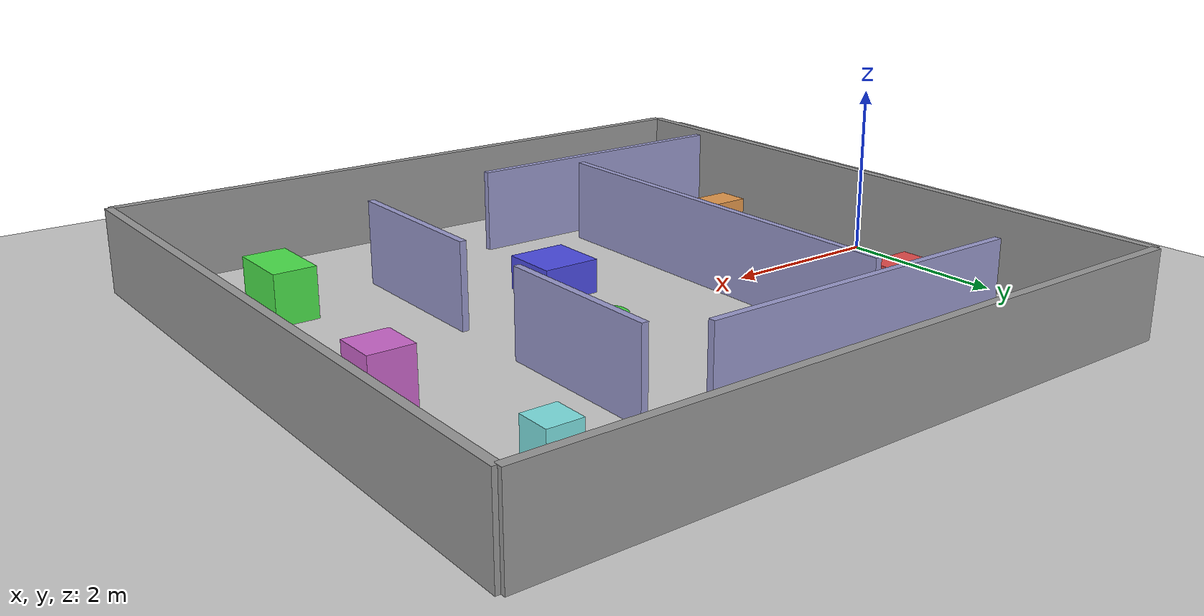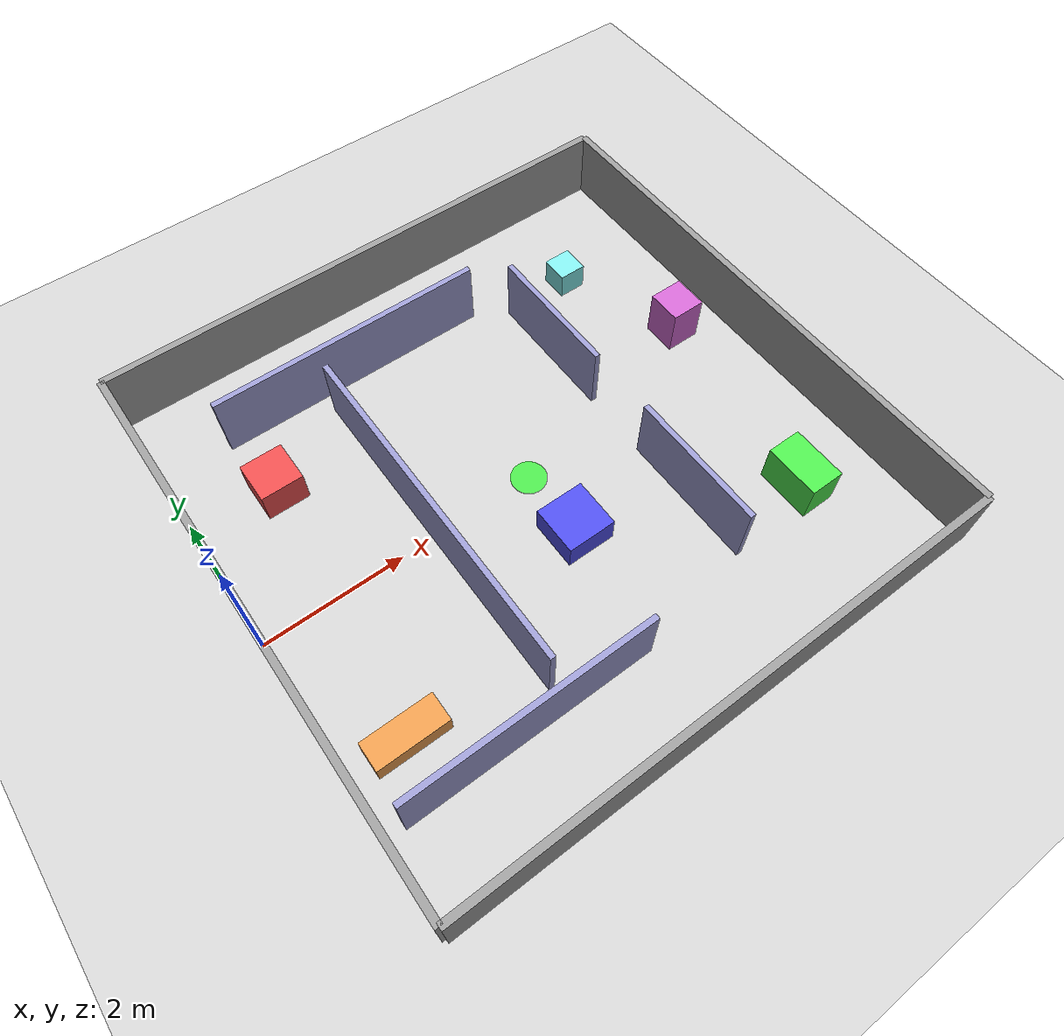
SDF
<?xml version="1.0" encoding="UTF-8"?>
<sdf version="1.6">
  <world name="omni_navigation_lab">

    <!-- ==================== DASAR DAN LINGKUNGAN ==================== -->
    <include>
      <uri>model://ground_plane</uri>
    </include>

    <include>
      <uri>model://sun</uri>
    </include>

    <light type="directional" name="ambient_light">
      <pose>5 5 10 0 0 0</pose>
      <diffuse>0.8 0.8 0.8 1</diffuse>
      <specular>0.5 0.5 0.5 1</specular>
      <direction>-0.5 -0.5 -1</direction>
    </light>

    <!-- ==================== DINDING LUAR (8x8 meter) - PROPORSI REALISTIS ==================== -->
    <!-- Dinding Utara (tebal 0.1, tinggi 1.0) -->
    <model name="wall_north">
      <static>true</static>
      <link name="link">
        <collision name="collision">
          <geometry>
            <box>
              <size>8.0 0.1 1.0</size>
            </box>
          </geometry>
        </collision>
        <visual name="visual">
          <geometry>
            <box>
              <size>8.0 0.1 1.0</size>
            </box>
          </geometry>
          <material>
            <ambient>0.4 0.4 0.4 1</ambient>
            <diffuse>0.6 0.6 0.6 1</diffuse>
          </material>
        </visual>
        <pose>4.0 4.0 0.5 0 0 0</pose>
      </link>
    </model>

    <!-- Dinding Selatan -->
    <model name="wall_south">
      <static>true</static>
      <link name="link">
        <collision name="collision">
          <geometry>
            <box>
              <size>8.0 0.1 1.0</size>
            </box>
          </geometry>
        </collision>
        <visual name="visual">
          <geometry>
            <box>
              <size>8.0 0.1 1.0</size>
            </box>
          </geometry>
          <material>
            <ambient>0.4 0.4 0.4 1</ambient>
            <diffuse>0.6 0.6 0.6 1</diffuse>
          </material>
        </visual>
        <pose>4.0 -4.0 0.5 0 0 0</pose>
      </link>
    </model>

    <!-- Dinding Timur -->
    <model name="wall_east">
      <static>true</static>
      <link name="link">
        <collision name="collision">
          <geometry>
            <box>
              <size>0.1 8.0 1.0</size>
            </box>
          </geometry>
        </collision>
        <visual name="visual">
          <geometry>
            <box>
              <size>0.1 8.0 1.0</size>
            </box>
          </geometry>
          <material>
            <ambient>0.4 0.4 0.4 1</ambient>
            <diffuse>0.6 0.6 0.6 1</diffuse>
          </material>
        </visual>
        <pose>8.0 0 0.5 0 0 0</pose>
      </link>
    </model>

    <!-- Dinding Barat -->
    <model name="wall_west">
      <static>true</static>
      <link name="link">
        <collision name="collision">
          <geometry>
            <box>
              <size>0.1 8.0 1.0</size>
            </box>
          </geometry>
        </collision>
        <visual name="visual">
          <geometry>
            <box>
              <size>0.1 8.0 1.0</size>
            </box>
          </geometry>
          <material>
            <ambient>0.4 0.4 0.4 1</ambient>
            <diffuse>0.6 0.6 0.6 1</diffuse>
          </material>
        </visual>
        <pose>0 0 0.5 0 0 0</pose>
      </link>
    </model>

    <!-- ==================== DINDING PEMBAGI BILIK (KOMPARTEMEN) ==================== -->
    <!-- Dinding vertikal kiri (membagi ruang jadi bilik kiri dan tengah) -->
    <model name="divider_vertical_left">
      <static>true</static>
      <link name="link">
        <collision name="collision">
          <geometry>
            <box>
              <size>0.08 5.0 1.0</size>
            </box>
          </geometry>
        </collision>
        <visual name="visual">
          <geometry>
            <box>
              <size>0.08 5.0 1.0</size>
            </box>
          </geometry>
          <material>
            <ambient>0.5 0.5 0.7 1</ambient>
            <diffuse>0.6 0.6 0.8 1</diffuse>
          </material>
        </visual>
        <pose>2.5 0 0.5 0 0 0</pose>
      </link>
    </model>

    <!-- Dinding vertikal kanan (dengan celah di tengah untuk akses) -->
    <model name="divider_vertical_right_top">
      <static>true</static>
      <link name="link">
        <collision name="collision">
          <geometry>
            <box>
              <size>0.08 2.0 1.0</size>
            </box>
          </geometry>
        </collision>
        <visual name="visual">
          <geometry>
            <box>
              <size>0.08 2.0 1.0</size>
            </box>
          </geometry>
          <material>
            <ambient>0.5 0.5 0.7 1</ambient>
            <diffuse>0.6 0.6 0.8 1</diffuse>
          </material>
        </visual>
        <pose>5.5 1.5 0.5 0 0 0</pose>
      </link>
    </model>

    <model name="divider_vertical_right_bottom">
      <static>true</static>
      <link name="link">
        <collision name="collision">
          <geometry>
            <box>
              <size>0.08 2.0 1.0</size>
            </box>
          </geometry>
        </collision>
        <visual name="visual">
          <geometry>
            <box>
              <size>0.08 2.0 1.0</size>
            </box>
          </geometry>
          <material>
            <ambient>0.5 0.5 0.7 1</ambient>
            <diffuse>0.6 0.6 0.8 1</diffuse>
          </material>
        </visual>
        <pose>5.5 -1.5 0.5 0 0 0</pose>
      </link>
    </model>

    <!-- Dinding horizontal pembatas bilik atas -->
    <model name="divider_horizontal_top">
      <static>true</static>
      <link name="link">
        <collision name="collision">
          <geometry>
            <box>
              <size>4.0 0.08 1.0</size>
            </box>
          </geometry>
        </collision>
        <visual name="visual">
          <geometry>
            <box>
              <size>4.0 0.08 1.0</size>
            </box>
          </geometry>
          <material>
            <ambient>0.5 0.5 0.7 1</ambient>
            <diffuse>0.6 0.6 0.8 1</diffuse>
          </material>
        </visual>
        <pose>3.0 2.8 0.5 0 0 0</pose>
      </link>
    </model>

    <!-- Dinding horizontal pembatas bilik bawah -->
    <model name="divider_horizontal_bottom">
      <static>true</static>
      <link name="link">
        <collision name="collision">
          <geometry>
            <box>
              <size>3.5 0.08 1.0</size>
            </box>
          </geometry>
        </collision>
        <visual name="visual">
          <geometry>
            <box>
              <size>3.5 0.08 1.0</size>
            </box>
          </geometry>
          <material>
            <ambient>0.5 0.5 0.7 1</ambient>
            <diffuse>0.6 0.6 0.8 1</diffuse>
          </material>
        </visual>
        <pose>2.0 -2.8 0.5 0 0 0</pose>
      </link>
    </model>

    <!-- ==================== OBSTACLE STATIS BOX ==================== -->
    <!-- Box obstruction 1: di bilik kiri atas -->
    <model name="obstacle_box_1">
      <static>true</static>
      <link name="link">
        <collision name="collision">
          <geometry>
            <box>
              <size>0.6 0.6 0.5</size>
            </box>
          </geometry>
        </collision>
        <visual name="visual">
          <geometry>
            <box>
              <size>0.6 0.6 0.5</size>
            </box>
          </geometry>
          <material>
            <ambient>0.8 0.2 0.2 1</ambient>
            <diffuse>0.9 0.3 0.3 1</diffuse>
          </material>
        </visual>
        <pose>1.2 1.8 0.25 0 0 0</pose>
      </link>
    </model>

    <!-- Box obstruction 2: di bilik kanan bawah -->
    <model name="obstacle_box_2">
      <static>true</static>
      <link name="link">
        <collision name="collision">
          <geometry>
            <box>
              <size>0.5 0.8 0.6</size>
            </box>
          </geometry>
        </collision>
        <visual name="visual">
          <geometry>
            <box>
              <size>0.5 0.8 0.6</size>
            </box>
          </geometry>
          <material>
            <ambient>0.2 0.8 0.2 1</ambient>
            <diffuse>0.3 0.9 0.3 1</diffuse>
          </material>
        </visual>
        <pose>6.8 -2.2 0.3 0 0 0</pose>
      </link>
    </model>

    <!-- Box obstruction 3: di tengah (jauh dari koridor utama) -->
    <model name="obstacle_box_3">
      <static>true</static>
      <link name="link">
        <collision name="collision">
          <geometry>
            <box>
              <size>0.7 0.7 0.4</size>
            </box>
          </geometry>
        </collision>
        <visual name="visual">
          <geometry>
            <box>
              <size>0.7 0.7 0.4</size>
            </box>
          </geometry>
          <material>
            <ambient>0.2 0.2 0.8 1</ambient>
            <diffuse>0.3 0.3 0.9 1</diffuse>
          </material>
        </visual>
        <pose>4.0 -1.0 0.2 0 0 0</pose>
      </link>
    </model>

    <!-- Box obstruction 4: obstacle memanjang di bilik kiri bawah -->
    <model name="obstacle_box_4">
      <static>true</static>
      <link name="link">
        <collision name="collision">
          <geometry>
            <box>
              <size>1.0 0.4 0.3</size>
            </box>
          </geometry>
        </collision>
        <visual name="visual">
          <geometry>
            <box>
              <size>1.0 0.4 0.3</size>
            </box>
          </geometry>
          <material>
            <ambient>0.8 0.5 0.2 1</ambient>
            <diffuse>0.9 0.6 0.3 1</diffuse>
          </material>
        </visual>
        <pose>0.8 -2.0 0.15 0 0 0</pose>
      </link>
    </model>

    <!-- Box obstruction 5: di dekat dinding timur -->
    <model name="obstacle_box_5">
      <static>true</static>
      <link name="link">
        <collision name="collision">
          <geometry>
            <box>
              <size>0.5 0.5 0.7</size>
            </box>
          </geometry>
        </collision>
        <visual name="visual">
          <geometry>
            <box>
              <size>0.5 0.5 0.7</size>
            </box>
          </geometry>
          <material>
            <ambient>0.7 0.3 0.7 1</ambient>
            <diffuse>0.8 0.4 0.8 1</diffuse>
          </material>
        </visual>
        <pose>7.2 0.8 0.35 0 0 0</pose>
      </link>
    </model>

    <!-- Box obstruction 6: obstacle kecil di bilik kanan atas -->
    <model name="obstacle_box_6">
      <static>true</static>
      <link name="link">
        <collision name="collision">
          <geometry>
            <box>
              <size>0.4 0.4 0.4</size>
            </box>
          </geometry>
        </collision>
        <visual name="visual">
          <geometry>
            <box>
              <size>0.4 0.4 0.4</size>
            </box>
          </geometry>
          <material>
            <ambient>0.4 0.8 0.8 1</ambient>
            <diffuse>0.5 0.9 0.9 1</diffuse>
          </material>
        </visual>
        <pose>6.5 2.5 0.2 0 0 0</pose>
      </link>
    </model>

    <!-- ==================== MARKER VISUAL PUSAT MAP (X=4.0, Y=0.0) ==================== -->
    <!-- Marker untuk verifikasi spawn robot di tengah -->
    <model name="center_spawn_marker">
      <static>true</static>
      <link name="link">
        <visual name="visual">
          <geometry>
            <cylinder>
              <radius>0.25</radius>
              <length>0.02</length>
            </cylinder>
          </geometry>
          <material>
            <ambient>0.0 1.0 0.0 0.6</ambient>
            <diffuse>0.0 1.0 0.0 0.6</diffuse>
            <transparency>0.4</transparency>
          </material>
        </visual>
        <pose>4.0 0.0 0.01 0 0 0</pose>
      </link>
    </model>

    <!-- ==================== VERIFIKASI CLEARANCE ==================== -->

  </world>
</sdf>
